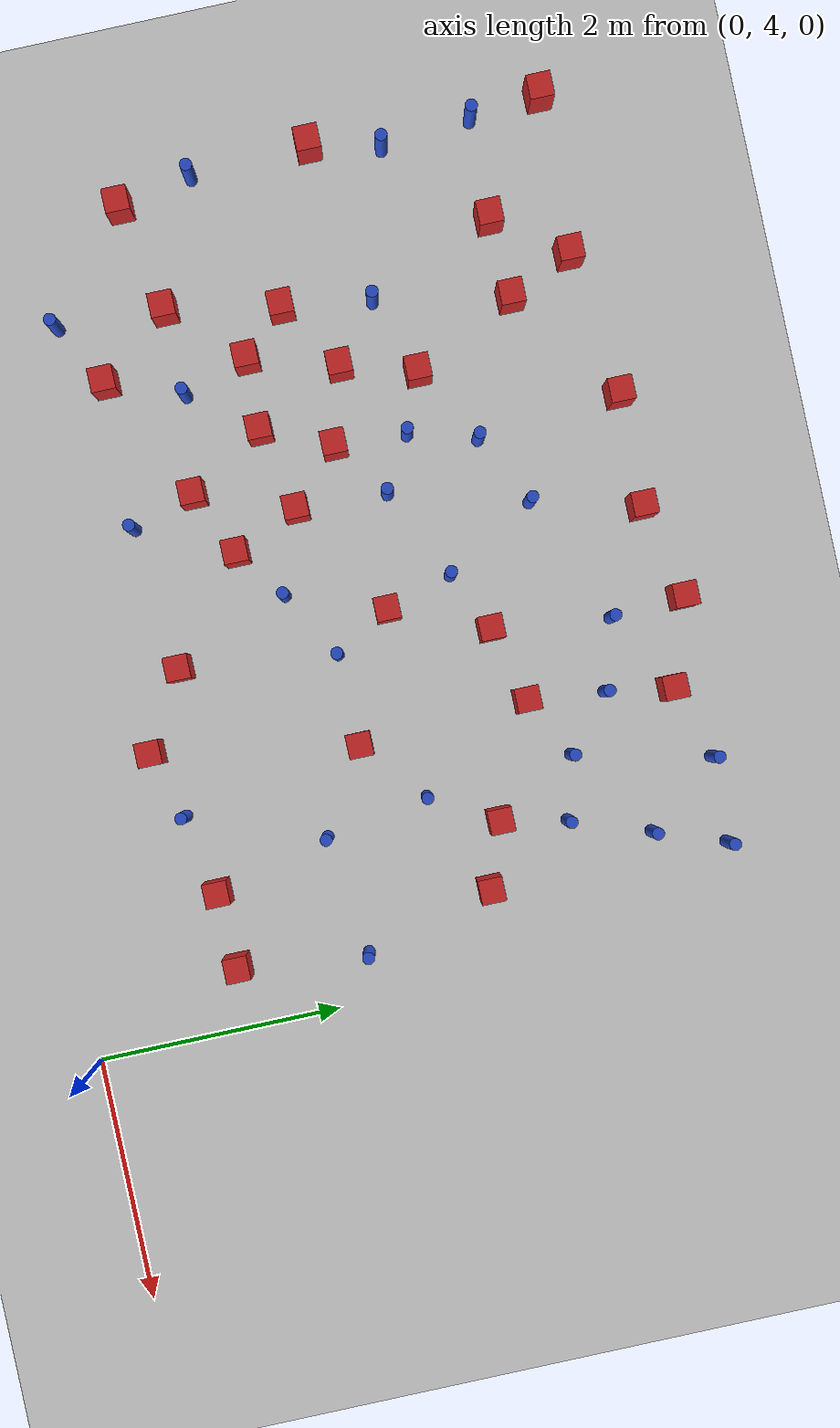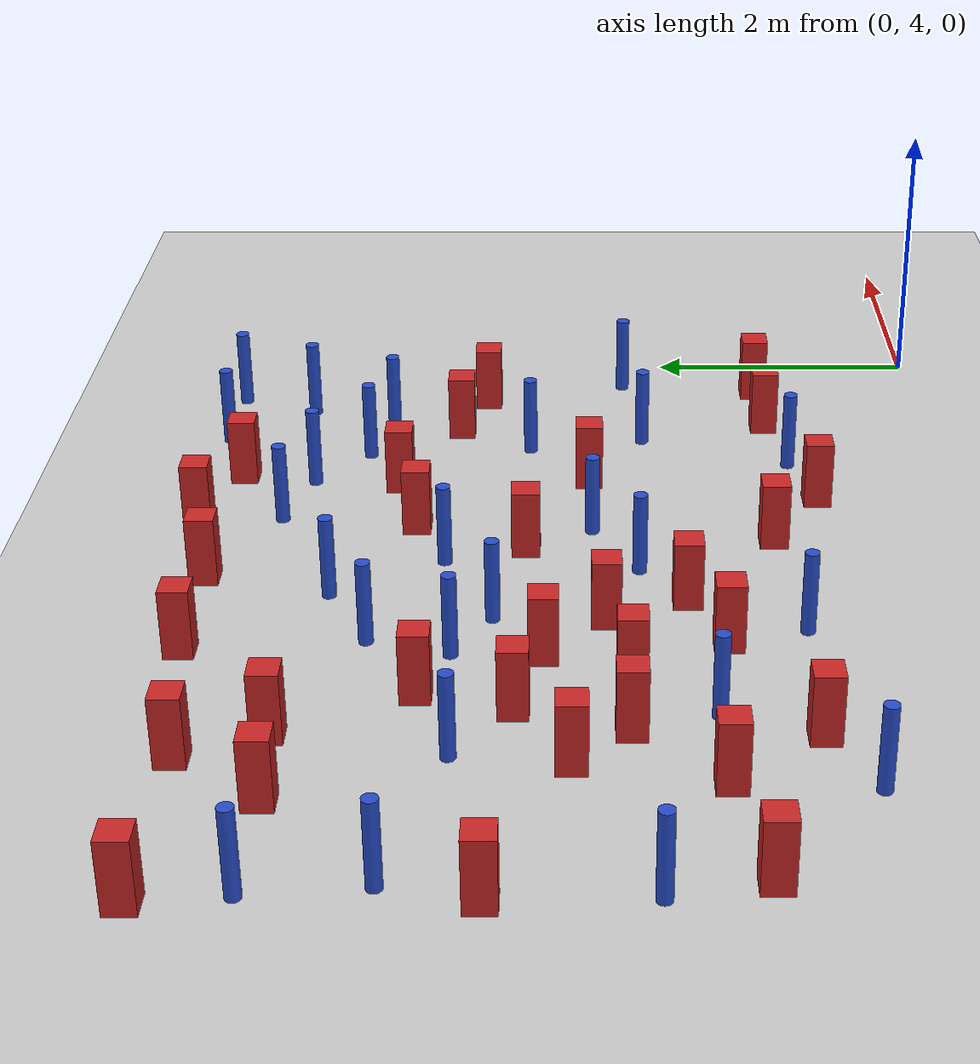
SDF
<sdf version="1.6">
 <world name="default">
  <model name="ground_plane">
   <static>1</static>
   <link name="link">
    <collision name="collision">
     <geometry><plane><normal>0 0 1</normal><size>100 100</size></plane></geometry>
     <surface><friction><ode><mu>100</mu><mu2>50</mu2></ode></friction></surface>
    </collision>
    <visual name="visual">
     <cast_shadows>0</cast_shadows>
     <geometry><plane><normal>0 0 1</normal><size>100 100</size></plane></geometry>
     <material>
      <ambient>1.0 1.0 1.0 1.0</ambient>
      <diffuse>0.8 0.8 0.8 1.0</diffuse>
      <specular>0.01 0.01 0.01 1.000000</specular>
     </material>
    </visual>
   </link>
  </model>
  <model name="square_post_obstacle0">
   <static>true</static>
   <pose>-1.24056156243 7.60405994039 8.22691968438e-08 7.2212513382e-06 -7.54495500217e-07 2.29674213826e-05</pose>
   <link name="link">
    <pose>0 0 0.25 0 -0 0</pose>
    <inertial>
     <mass>100</mass>
     <inertia>
      <ixx>0.166667</ixx>
      <ixy>0</ixy>
      <ixz>0</ixz>
      <iyy>0.166667</iyy>
      <iyz>0</iyz>
      <izz>0.166667</izz>
     </inertia>
    </inertial>
    <collision name="collision"><geometry><box><size>.2 .2 .5</size></box></geometry></collision>
    <visual name="visual">
     <geometry><box><size>.2 .2 .5</size></box></geometry>
     <material>
      <script><name>Gazebo/Red</name><uri>file://media/materials/scripts/gazebo.material</uri></script>
     </material>
    </visual>
   </link>
  </model>
  <model name="square_post_obstacle2">
   <static>true</static>
   <pose>-3.81783800172 5.97276972752 8.22691968438e-08 7.2212513382e-06 -7.54495500217e-07 2.29674213826e-05</pose>
   <link name="link">
    <pose>0 0 0.25 0 -0 0</pose>
    <inertial>
     <mass>100</mass>
     <inertia>
      <ixx>0.166667</ixx>
      <ixy>0</ixy>
      <ixz>0</ixz>
      <iyy>0.166667</iyy>
      <iyz>0</iyz>
      <izz>0.166667</izz>
     </inertia>
    </inertial>
    <collision name="collision"><geometry><box><size>.2 .2 .5</size></box></geometry></collision>
    <visual name="visual">
     <geometry><box><size>.2 .2 .5</size></box></geometry>
     <material>
      <script><name>Gazebo/Red</name><uri>file://media/materials/scripts/gazebo.material</uri></script>
     </material>
    </visual>
   </link>
  </model>
  <model name="pole_obstacle8">
   <static>true</static>
   <pose>-1.11618082176 8.14739392024 2.88873142074e-08 -9.90536690474e-09 4.60219948974e-07 -1.2096599497e-07</pose>
   <link name="link">
    <pose>0 0 0.3 0 -0 0</pose>
    <inertial>
     <mass>1</mass>
     <inertia><ixx>0.145833</ixx><ixy>0</ixy><ixz>0</ixz><iyy>0.145833</iyy><iyz>0</iyz><izz>0.125</izz></inertia>
    </inertial>
    <collision name="collision">
     <geometry><cylinder><radius>0.05</radius><length>.6</length></cylinder></geometry>
    </collision>
    <visual name="visual">
     <geometry><cylinder><radius>0.05</radius><length>.6</length></cylinder></geometry>
     <material>
      <script><name>Gazebo/Blue</name><uri>file://media/materials/scripts/gazebo.material</uri></script>
     </material>
    </visual>
   </link>
  </model>
  <model name="square_post_obstacle19">
   <static>true</static>
   <pose>-2.99553876486 5.32065947652 8.22691968438e-08 7.2212513382e-06 -7.54495500217e-07 2.29674213826e-05</pose>
   <link name="link">
    <pose>0 0 0.25 0 -0 0</pose>
    <inertial>
     <mass>100</mass>
     <inertia>
      <ixx>0.166667</ixx>
      <ixy>0</ixy>
      <ixz>0</ixz>
      <iyy>0.166667</iyy>
      <iyz>0</iyz>
      <izz>0.166667</izz>
     </inertia>
    </inertial>
    <collision name="collision"><geometry><box><size>.2 .2 .5</size></box></geometry></collision>
    <visual name="visual">
     <geometry><box><size>.2 .2 .5</size></box></geometry>
     <material>
      <script><name>Gazebo/Red</name><uri>file://media/materials/scripts/gazebo.material</uri></script>
     </material>
    </visual>
   </link>
  </model>
  <model name="pole_obstacle11">
   <static>true</static>
   <pose>-6.87196957462 8.5809538864 2.88873142074e-08 -9.9053668967e-09 4.60219948993e-07 -1.20965994957e-07</pose>
   <link name="link">
    <pose>0 0 0.3 0 -0 0</pose>
    <inertial>
     <mass>1</mass>
     <inertia><ixx>0.145833</ixx><ixy>0</ixy><ixz>0</ixz><iyy>0.145833</iyy><iyz>0</iyz><izz>0.125</izz></inertia>
    </inertial>
    <collision name="collision">
     <geometry><cylinder><radius>0.05</radius><length>.6</length></cylinder></geometry>
    </collision>
    <visual name="visual">
     <geometry><cylinder><radius>0.05</radius><length>.6</length></cylinder></geometry>
     <material>
      <script><name>Gazebo/Blue</name><uri>file://media/materials/scripts/gazebo.material</uri></script>
     </material>
    </visual>
   </link>
  </model>
  <model name="square_post_obstacle20">
   <static>true</static>
   <pose>-6.92894778926 7.24512789114 8.22691968438e-08 7.2212513382e-06 -7.54495500217e-07 2.29674213826e-05</pose>
   <link name="link">
    <pose>0 0 0.25 0 -0 0</pose>
    <inertial>
     <mass>100</mass>
     <inertia>
      <ixx>0.166667</ixx>
      <ixy>0</ixy>
      <ixz>0</ixz>
      <iyy>0.166667</iyy>
      <iyz>0</iyz>
      <izz>0.166667</izz>
     </inertia>
    </inertial>
    <collision name="collision"><geometry><box><size>.2 .2 .5</size></box></geometry></collision>
    <visual name="visual">
     <geometry><box><size>.2 .2 .5</size></box></geometry>
     <material>
      <script><name>Gazebo/Red</name><uri>file://media/materials/scripts/gazebo.material</uri></script>
     </material>
    </visual>
   </link>
  </model>
  <model name="square_post_obstacle22">
   <static>true</static>
   <pose>-3.49046418424 9.27107695211 8.22691968438e-08 7.22125133819e-06 -7.54495500217e-07 2.29674213826e-05</pose>
   <link name="link">
    <pose>0 0 0.25 0 -0 0</pose>
    <inertial>
     <mass>100</mass>
     <inertia>
      <ixx>0.166667</ixx>
      <ixy>0</ixy>
      <ixz>0</ixz>
      <iyy>0.166667</iyy>
      <iyz>0</iyz>
      <izz>0.166667</izz>
     </inertia>
    </inertial>
    <collision name="collision"><geometry><box><size>.2 .2 .5</size></box></geometry></collision>
    <visual name="visual">
     <geometry><box><size>.2 .2 .5</size></box></geometry>
     <material>
      <script><name>Gazebo/Red</name><uri>file://media/materials/scripts/gazebo.material</uri></script>
     </material>
    </visual>
   </link>
  </model>
  <model name="pole_obstacle19">
   <static>true</static>
   <pose>-6.894988678 6.25508551908 2.88873142074e-08 -9.90536690842e-09 4.60219948965e-07 -1.20965994976e-07</pose>
   <link name="link">
    <pose>0 0 0.3 0 -0 0</pose>
    <inertial>
     <mass>1</mass>
     <inertia><ixx>0.145833</ixx><ixy>0</ixy><ixz>0</ixz><iyy>0.145833</iyy><iyz>0</iyz><izz>0.125</izz></inertia>
    </inertial>
    <collision name="collision">
     <geometry><cylinder><radius>0.05</radius><length>.6</length></cylinder></geometry>
    </collision>
    <visual name="visual">
     <geometry><cylinder><radius>0.05</radius><length>.6</length></cylinder></geometry>
     <material>
      <script><name>Gazebo/Blue</name><uri>file://media/materials/scripts/gazebo.material</uri></script>
     </material>
    </visual>
   </link>
  </model>
  <model name="square_post_obstacle29">
   <static>true</static>
   <pose>-2.15079923924 8.02366086059 8.22691968438e-08 7.22125133819e-06 -7.54495500217e-07 2.29674213826e-05</pose>
   <link name="link">
    <pose>0 0 0.25 0 -0 0</pose>
    <inertial>
     <mass>100</mass>
     <inertia>
      <ixx>0.166667</ixx>
      <ixy>0</ixy>
      <ixz>0</ixz>
      <iyy>0.166667</iyy>
      <iyz>0</iyz>
      <izz>0.166667</izz>
     </inertia>
    </inertial>
    <collision name="collision"><geometry><box><size>.2 .2 .5</size></box></geometry></collision>
    <visual name="visual">
     <geometry><box><size>.2 .2 .5</size></box></geometry>
     <material>
      <script><name>Gazebo/Red</name><uri>file://media/materials/scripts/gazebo.material</uri></script>
     </material>
    </visual>
   </link>
  </model>
  <model name="square_post_obstacle31">
   <static>true</static>
   <pose>-5.37480407238 8.58938074372 8.22691968438e-08 7.22125133819e-06 -7.54495500217e-07 2.29674213826e-05</pose>
   <link name="link">
    <pose>0 0 0.25 0 -0 0</pose>
    <inertial>
     <mass>100</mass>
     <inertia>
      <ixx>0.166667</ixx>
      <ixy>0</ixy>
      <ixz>0</ixz>
      <iyy>0.166667</iyy>
      <iyz>0</iyz>
      <izz>0.166667</izz>
     </inertia>
    </inertial>
    <collision name="collision"><geometry><box><size>.2 .2 .5</size></box></geometry></collision>
    <visual name="visual">
     <geometry><box><size>.2 .2 .5</size></box></geometry>
     <material>
      <script><name>Gazebo/Red</name><uri>file://media/materials/scripts/gazebo.material</uri></script>
     </material>
    </visual>
   </link>
  </model>
  <model name="pole_obstacle27">
   <static>true</static>
   <pose>-2.83430194717 6.60351410121 2.88873142074e-08 -9.90536689859e-09 4.60219948989e-07 -1.20965994961e-07</pose>
   <link name="link">
    <pose>0 0 0.3 0 -0 0</pose>
    <inertial>
     <mass>1</mass>
     <inertia><ixx>0.145833</ixx><ixy>0</ixy><ixz>0</ixz><iyy>0.145833</iyy><iyz>0</iyz><izz>0.125</izz></inertia>
    </inertial>
    <collision name="collision">
     <geometry><cylinder><radius>0.05</radius><length>.6</length></cylinder></geometry>
    </collision>
    <visual name="visual">
     <geometry><cylinder><radius>0.05</radius><length>.6</length></cylinder></geometry>
     <material>
      <script><name>Gazebo/Blue</name><uri>file://media/materials/scripts/gazebo.material</uri></script>
     </material>
    </visual>
   </link>
  </model>
  <model name="pole_obstacle28">
   <static>true</static>
   <pose>-0.881720828298 8.80049282505 2.88873142074e-08 -9.90536690779e-09 4.60219948967e-07 -1.20965994975e-07</pose>
   <link name="link">
    <pose>0 0 0.3 0 -0 0</pose>
    <inertial>
     <mass>1</mass>
     <inertia><ixx>0.145833</ixx><ixy>0</ixy><ixz>0</ixz><iyy>0.145833</iyy><iyz>0</iyz><izz>0.125</izz></inertia>
    </inertial>
    <collision name="collision">
     <geometry><cylinder><radius>0.05</radius><length>.6</length></cylinder></geometry>
    </collision>
    <visual name="visual">
     <geometry><cylinder><radius>0.05</radius><length>.6</length></cylinder></geometry>
     <material>
      <script><name>Gazebo/Blue</name><uri>file://media/materials/scripts/gazebo.material</uri></script>
     </material>
    </visual>
   </link>
  </model>
  <model name="pole_obstacle31">
   <static>true</static>
   <pose>-1.37464773365 9.41036834551 2.88873142074e-08 -9.90536690474e-09 4.60219948974e-07 -1.2096599497e-07</pose>
   <link name="link">
    <pose>0 0 0.3 0 -0 0</pose>
    <inertial>
     <mass>1</mass>
     <inertia><ixx>0.145833</ixx><ixy>0</ixy><ixz>0</ixz><iyy>0.145833</iyy><iyz>0</iyz><izz>0.125</izz></inertia>
    </inertial>
    <collision name="collision">
     <geometry><cylinder><radius>0.05</radius><length>.6</length></cylinder></geometry>
    </collision>
    <visual name="visual">
     <geometry><cylinder><radius>0.05</radius><length>.6</length></cylinder></geometry>
     <material>
      <script><name>Gazebo/Blue</name><uri>file://media/materials/scripts/gazebo.material</uri></script>
     </material>
    </visual>
   </link>
  </model>
  <model name="square_post_obstacle41">
   <static>true</static>
   <pose>-4.75216271165 6.3695584136 8.22691968438e-08 7.22125133819e-06 -7.54495500217e-07 2.29674213826e-05</pose>
   <link name="link">
    <pose>0 0 0.25 0 -0 0</pose>
    <inertial>
     <mass>100</mass>
     <inertia>
      <ixx>0.166667</ixx>
      <ixy>0</ixy>
      <ixz>0</ixz>
      <iyy>0.166667</iyy>
      <iyz>0</iyz>
      <izz>0.166667</izz>
     </inertia>
    </inertial>
    <collision name="collision"><geometry><box><size>.2 .2 .5</size></box></geometry></collision>
    <visual name="visual">
     <geometry><box><size>.2 .2 .5</size></box></geometry>
     <material>
      <script><name>Gazebo/Red</name><uri>file://media/materials/scripts/gazebo.material</uri></script>
     </material>
    </visual>
   </link>
  </model>
  <model name="square_post_obstacle49">
   <static>true</static>
   <pose>-2.07835015047 6.62156302349 8.22691968438e-08 7.22125133819e-06 -7.54495500217e-07 2.29674213826e-05</pose>
   <link name="link">
    <pose>0 0 0.25 0 -0 0</pose>
    <inertial>
     <mass>100</mass>
     <inertia>
      <ixx>0.166667</ixx>
      <ixy>0</ixy>
      <ixz>0</ixz>
      <iyy>0.166667</iyy>
      <iyz>0</iyz>
      <izz>0.166667</izz>
     </inertia>
    </inertial>
    <collision name="collision"><geometry><box><size>.2 .2 .5</size></box></geometry></collision>
    <visual name="visual">
     <geometry><box><size>.2 .2 .5</size></box></geometry>
     <material>
      <script><name>Gazebo/Red</name><uri>file://media/materials/scripts/gazebo.material</uri></script>
     </material>
    </visual>
   </link>
  </model>
  <model name="pole_obstacle54">
   <static>true</static>
   <pose>-4.18480742666 5.19874319376 2.88873142074e-08 -9.90536690842e-09 4.60219948965e-07 -1.20965994976e-07</pose>
   <link name="link">
    <pose>0 0 0.3 0 -0 0</pose>
    <inertial>
     <mass>1</mass>
     <inertia><ixx>0.145833</ixx><ixy>0</ixy><ixz>0</ixz><iyy>0.145833</iyy><iyz>0</iyz><izz>0.125</izz></inertia>
    </inertial>
    <collision name="collision">
     <geometry><cylinder><radius>0.05</radius><length>.6</length></cylinder></geometry>
    </collision>
    <visual name="visual">
     <geometry><cylinder><radius>0.05</radius><length>.6</length></cylinder></geometry>
     <material>
      <script><name>Gazebo/Blue</name><uri>file://media/materials/scripts/gazebo.material</uri></script>
     </material>
    </visual>
   </link>
  </model>
  <model name="pole_obstacle55">
   <static>true</static>
   <pose>-6.79586150801 7.82657855512 2.88873142074e-08 -9.90536690842e-09 4.60219948965e-07 -1.20965994976e-07</pose>
   <link name="link">
    <pose>0 0 0.3 0 -0 0</pose>
    <inertial>
     <mass>1</mass>
     <inertia><ixx>0.145833</ixx><ixy>0</ixy><ixz>0</ixz><iyy>0.145833</iyy><iyz>0</iyz><izz>0.125</izz></inertia>
    </inertial>
    <collision name="collision">
     <geometry><cylinder><radius>0.05</radius><length>.6</length></cylinder></geometry>
    </collision>
    <visual name="visual">
     <geometry><cylinder><radius>0.05</radius><length>.6</length></cylinder></geometry>
     <material>
      <script><name>Gazebo/Blue</name><uri>file://media/materials/scripts/gazebo.material</uri></script>
     </material>
    </visual>
   </link>
  </model>
  <model name="pole_obstacle64">
   <static>true</static>
   <pose>-1.80840830395 5.10802447048 2.88873142074e-08 -9.90536689852e-09 4.60219948989e-07 -1.2096599496e-07</pose>
   <link name="link">
    <pose>0 0 0.3 0 -0 0</pose>
    <inertial>
     <mass>1</mass>
     <inertia><ixx>0.145833</ixx><ixy>0</ixy><ixz>0</ixz><iyy>0.145833</iyy><iyz>0</iyz><izz>0.125</izz></inertia>
    </inertial>
    <collision name="collision">
     <geometry><cylinder><radius>0.05</radius><length>.6</length></cylinder></geometry>
    </collision>
    <visual name="visual">
     <geometry><cylinder><radius>0.05</radius><length>.6</length></cylinder></geometry>
     <material>
      <script><name>Gazebo/Blue</name><uri>file://media/materials/scripts/gazebo.material</uri></script>
     </material>
    </visual>
   </link>
  </model>
  <model name="square_post_obstacle67">
   <static>true</static>
   <pose>-4.06310362804 6.52372642739 8.22691968438e-08 7.2212513382e-06 -7.54495500217e-07 2.29674213826e-05</pose>
   <link name="link">
    <pose>0 0 0.25 0 -0 0</pose>
    <inertial>
     <mass>100</mass>
     <inertia>
      <ixx>0.166667</ixx>
      <ixy>0</ixy>
      <ixz>0</ixz>
      <iyy>0.166667</iyy>
      <iyz>0</iyz>
      <izz>0.166667</izz>
     </inertia>
    </inertial>
    <collision name="collision"><geometry><box><size>.2 .2 .5</size></box></geometry></collision>
    <visual name="visual">
     <geometry><box><size>.2 .2 .5</size></box></geometry>
     <material>
      <script><name>Gazebo/Red</name><uri>file://media/materials/scripts/gazebo.material</uri></script>
     </material>
    </visual>
   </link>
  </model>
  <model name="square_post_obstacle77">
   <static>true</static>
   <pose>-2.77741709891 7.85880427165 8.22691968438e-08 7.2212513382e-06 -7.54495500217e-07 2.29674213826e-05</pose>
   <link name="link">
    <pose>0 0 0.25 0 -0 0</pose>
    <inertial>
     <mass>100</mass>
     <inertia>
      <ixx>0.166667</ixx>
      <ixy>0</ixy>
      <ixz>0</ixz>
      <iyy>0.166667</iyy>
      <iyz>0</iyz>
      <izz>0.166667</izz>
     </inertia>
    </inertial>
    <collision name="collision"><geometry><box><size>.2 .2 .5</size></box></geometry></collision>
    <visual name="visual">
     <geometry><box><size>.2 .2 .5</size></box></geometry>
     <material>
      <script><name>Gazebo/Red</name><uri>file://media/materials/scripts/gazebo.material</uri></script>
     </material>
    </visual>
   </link>
  </model>
  <model name="square_post_obstacle78">
   <static>true</static>
   <pose>-5.39090013703 5.22461043448 8.22691968438e-08 7.2212513382e-06 -7.54495500217e-07 2.29674213826e-05</pose>
   <link name="link">
    <pose>0 0 0.25 0 -0 0</pose>
    <inertial>
     <mass>100</mass>
     <inertia>
      <ixx>0.166667</ixx>
      <ixy>0</ixy>
      <ixz>0</ixz>
      <iyy>0.166667</iyy>
      <iyz>0</iyz>
      <izz>0.166667</izz>
     </inertia>
    </inertial>
    <collision name="collision"><geometry><box><size>.2 .2 .5</size></box></geometry></collision>
    <visual name="visual">
     <geometry><box><size>.2 .2 .5</size></box></geometry>
     <material>
      <script><name>Gazebo/Red</name><uri>file://media/materials/scripts/gazebo.material</uri></script>
     </material>
    </visual>
   </link>
  </model>
  <model name="pole_obstacle87">
   <static>true</static>
   <pose>-3.72088470826 8.39502666144 2.88873142074e-08 -9.90536692318e-09 4.6021994893e-07 -1.20965994988e-07</pose>
   <link name="link">
    <pose>0 0 0.3 0 -0 0</pose>
    <inertial>
     <mass>1</mass>
     <inertia><ixx>0.145833</ixx><ixy>0</ixy><ixz>0</ixz><iyy>0.145833</iyy><iyz>0</iyz><izz>0.125</izz></inertia>
    </inertial>
    <collision name="collision">
     <geometry><cylinder><radius>0.05</radius><length>.6</length></cylinder></geometry>
    </collision>
    <visual name="visual">
     <geometry><cylinder><radius>0.05</radius><length>.6</length></cylinder></geometry>
     <material>
      <script><name>Gazebo/Blue</name><uri>file://media/materials/scripts/gazebo.material</uri></script>
     </material>
    </visual>
   </link>
  </model>
  <model name="square_post_obstacle93">
   <static>true</static>
   <pose>-3.10732170272 7.07258946887 8.22691968438e-08 7.2212513382e-06 -7.54495500217e-07 2.29674213826e-05</pose>
   <link name="link">
    <pose>0 0 0.25 0 -0 0</pose>
    <inertial>
     <mass>100</mass>
     <inertia>
      <ixx>0.166667</ixx>
      <ixy>0</ixy>
      <ixz>0</ixz>
      <iyy>0.166667</iyy>
      <iyz>0</iyz>
      <izz>0.166667</izz>
     </inertia>
    </inertial>
    <collision name="collision"><geometry><box><size>.2 .2 .5</size></box></geometry></collision>
    <visual name="visual">
     <geometry><box><size>.2 .2 .5</size></box></geometry>
     <material>
      <script><name>Gazebo/Red</name><uri>file://media/materials/scripts/gazebo.material</uri></script>
     </material>
    </visual>
   </link>
  </model>
  <model name="square_post_obstacle103">
   <static>true</static>
   <pose>-0.526675739928 5.27401405673 8.22691968438e-08 7.2212513382e-06 -7.54495500217e-07 2.29674213826e-05</pose>
   <link name="link">
    <pose>0 0 0.25 0 -0 0</pose>
    <inertial>
     <mass>100</mass>
     <inertia>
      <ixx>0.166667</ixx>
      <ixy>0</ixy>
      <ixz>0</ixz>
      <iyy>0.166667</iyy>
      <iyz>0</iyz>
      <izz>0.166667</izz>
     </inertia>
    </inertial>
    <collision name="collision"><geometry><box><size>.2 .2 .5</size></box></geometry></collision>
    <visual name="visual">
     <geometry><box><size>.2 .2 .5</size></box></geometry>
     <material>
      <script><name>Gazebo/Red</name><uri>file://media/materials/scripts/gazebo.material</uri></script>
     </material>
    </visual>
   </link>
  </model>
  <model name="square_post_obstacle104">
   <static>true</static>
   <pose>-2.70436583497 9.43806250138 8.22691968438e-08 7.22125133819e-06 -7.54495500217e-07 2.29674213826e-05</pose>
   <link name="link">
    <pose>0 0 0.25 0 -0 0</pose>
    <inertial>
     <mass>100</mass>
     <inertia>
      <ixx>0.166667</ixx>
      <ixy>0</ixy>
      <ixz>0</ixz>
      <iyy>0.166667</iyy>
      <iyz>0</iyz>
      <izz>0.166667</izz>
     </inertia>
    </inertial>
    <collision name="collision"><geometry><box><size>.2 .2 .5</size></box></geometry></collision>
    <visual name="visual">
     <geometry><box><size>.2 .2 .5</size></box></geometry>
     <material>
      <script><name>Gazebo/Red</name><uri>file://media/materials/scripts/gazebo.material</uri></script>
     </material>
    </visual>
   </link>
  </model>
  <model name="square_post_obstacle108">
   <static>true</static>
   <pose>-2.37048747096 4.94945059315 8.22691968438e-08 7.2212513382e-06 -7.54495500217e-07 2.29674213826e-05</pose>
   <link name="link">
    <pose>0 0 0.25 0 -0 0</pose>
    <inertial>
     <mass>100</mass>
     <inertia>
      <ixx>0.166667</ixx>
      <ixy>0</ixy>
      <ixz>0</ixz>
      <iyy>0.166667</iyy>
      <iyz>0</iyz>
      <izz>0.166667</izz>
     </inertia>
    </inertial>
    <collision name="collision"><geometry><box><size>.2 .2 .5</size></box></geometry></collision>
    <visual name="visual">
     <geometry><box><size>.2 .2 .5</size></box></geometry>
     <material>
      <script><name>Gazebo/Red</name><uri>file://media/materials/scripts/gazebo.material</uri></script>
     </material>
    </visual>
   </link>
  </model>
  <model name="square_post_obstacle110">
   <static>true</static>
   <pose>-5.62024013825 9.12747473342 8.22691968438e-08 7.22125133819e-06 -7.54495500217e-07 2.29674213826e-05</pose>
   <link name="link">
    <pose>0 0 0.25 0 -0 0</pose>
    <inertial>
     <mass>100</mass>
     <inertia>
      <ixx>0.166667</ixx>
      <ixy>0</ixy>
      <ixz>0</ixz>
      <iyy>0.166667</iyy>
      <iyz>0</iyz>
      <izz>0.166667</izz>
     </inertia>
    </inertial>
    <collision name="collision"><geometry><box><size>.2 .2 .5</size></box></geometry></collision>
    <visual name="visual">
     <geometry><box><size>.2 .2 .5</size></box></geometry>
     <material>
      <script><name>Gazebo/Red</name><uri>file://media/materials/scripts/gazebo.material</uri></script>
     </material>
    </visual>
   </link>
  </model>
  <model name="square_post_obstacle112">
   <static>true</static>
   <pose>-4.42362314433 9.28408175921 8.22691968438e-08 7.22125133819e-06 -7.54495500217e-07 2.29674213826e-05</pose>
   <link name="link">
    <pose>0 0 0.25 0 -0 0</pose>
    <inertial>
     <mass>100</mass>
     <inertia>
      <ixx>0.166667</ixx>
      <ixy>0</ixy>
      <ixz>0</ixz>
      <iyy>0.166667</iyy>
      <iyz>0</iyz>
      <izz>0.166667</izz>
     </inertia>
    </inertial>
    <collision name="collision"><geometry><box><size>.2 .2 .5</size></box></geometry></collision>
    <visual name="visual">
     <geometry><box><size>.2 .2 .5</size></box></geometry>
     <material>
      <script><name>Gazebo/Red</name><uri>file://media/materials/scripts/gazebo.material</uri></script>
     </material>
    </visual>
   </link>
  </model>
  <model name="pole_obstacle127">
   <static>true</static>
   <pose>-4.03116325493 7.27642994995 2.88873142074e-08 -9.90536691069e-09 4.6021994896e-07 -1.20965994979e-07</pose>
   <link name="link">
    <pose>0 0 0.3 0 -0 0</pose>
    <inertial>
     <mass>1</mass>
     <inertia><ixx>0.145833</ixx><ixy>0</ixy><ixz>0</ixz><iyy>0.145833</iyy><iyz>0</iyz><izz>0.125</izz></inertia>
    </inertial>
    <collision name="collision">
     <geometry><cylinder><radius>0.05</radius><length>.6</length></cylinder></geometry>
    </collision>
    <visual name="visual">
     <geometry><cylinder><radius>0.05</radius><length>.6</length></cylinder></geometry>
     <material>
      <script><name>Gazebo/Blue</name><uri>file://media/materials/scripts/gazebo.material</uri></script>
     </material>
    </visual>
   </link>
  </model>
  <model name="pole_obstacle132">
   <static>true</static>
   <pose>-4.30990283819 8.09398616988 2.88873142074e-08 -9.9053668967e-09 4.60219948993e-07 -1.20965994957e-07</pose>
   <link name="link">
    <pose>0 0 0.3 0 -0 0</pose>
    <inertial>
     <mass>1</mass>
     <inertia><ixx>0.145833</ixx><ixy>0</ixy><ixz>0</ixz><iyy>0.145833</iyy><iyz>0</iyz><izz>0.125</izz></inertia>
    </inertial>
    <collision name="collision">
     <geometry><cylinder><radius>0.05</radius><length>.6</length></cylinder></geometry>
    </collision>
    <visual name="visual">
     <geometry><cylinder><radius>0.05</radius><length>.6</length></cylinder></geometry>
     <material>
      <script><name>Gazebo/Blue</name><uri>file://media/materials/scripts/gazebo.material</uri></script>
     </material>
    </visual>
   </link>
  </model>
  <model name="square_post_obstacle125">
   <static>true</static>
   <pose>-5.69023169347 6.75379353841 8.22691968438e-08 7.22125133819e-06 -7.54495500217e-07 2.29674213826e-05</pose>
   <link name="link">
    <pose>0 0 0.25 0 -0 0</pose>
    <inertial>
     <mass>100</mass>
     <inertia>
      <ixx>0.166667</ixx>
      <ixy>0</ixy>
      <ixz>0</ixz>
      <iyy>0.166667</iyy>
      <iyz>0</iyz>
      <izz>0.166667</izz>
     </inertia>
    </inertial>
    <collision name="collision"><geometry><box><size>.2 .2 .5</size></box></geometry></collision>
    <visual name="visual">
     <geometry><box><size>.2 .2 .5</size></box></geometry>
     <material>
      <script><name>Gazebo/Red</name><uri>file://media/materials/scripts/gazebo.material</uri></script>
     </material>
    </visual>
   </link>
  </model>
  <model name="square_post_obstacle135">
   <static>true</static>
   <pose>-5.87402302679 5.82084964344 8.22691968438e-08 7.2212513382e-06 -7.54495500217e-07 2.29674213826e-05</pose>
   <link name="link">
    <pose>0 0 0.25 0 -0 0</pose>
    <inertial>
     <mass>100</mass>
     <inertia>
      <ixx>0.166667</ixx>
      <ixy>0</ixy>
      <ixz>0</ixz>
      <iyy>0.166667</iyy>
      <iyz>0</iyz>
      <izz>0.166667</izz>
     </inertia>
    </inertial>
    <collision name="collision"><geometry><box><size>.2 .2 .5</size></box></geometry></collision>
    <visual name="visual">
     <geometry><box><size>.2 .2 .5</size></box></geometry>
     <material>
      <script><name>Gazebo/Red</name><uri>file://media/materials/scripts/gazebo.material</uri></script>
     </material>
    </visual>
   </link>
  </model>
  <model name="pole_obstacle147">
   <static>true</static>
   <pose>-1.54829642677 7.06569432322 2.88873142074e-08 -9.90536689852e-09 4.60219948989e-07 -1.2096599496e-07</pose>
   <link name="link">
    <pose>0 0 0.3 0 -0 0</pose>
    <inertial>
     <mass>1</mass>
     <inertia><ixx>0.145833</ixx><ixy>0</ixy><ixz>0</ixz><iyy>0.145833</iyy><iyz>0</iyz><izz>0.125</izz></inertia>
    </inertial>
    <collision name="collision">
     <geometry><cylinder><radius>0.05</radius><length>.6</length></cylinder></geometry>
    </collision>
    <visual name="visual">
     <geometry><cylinder><radius>0.05</radius><length>.6</length></cylinder></geometry>
     <material>
      <script><name>Gazebo/Blue</name><uri>file://media/materials/scripts/gazebo.material</uri></script>
     </material>
    </visual>
   </link>
  </model>
  <model name="square_post_obstacle137">
   <static>true</static>
   <pose>-1.99507761346 9.20154818949 8.22691968438e-08 7.22125133819e-06 -7.54495500217e-07 2.29674213826e-05</pose>
   <link name="link">
    <pose>0 0 0.25 0 -0 0</pose>
    <inertial>
     <mass>100</mass>
     <inertia>
      <ixx>0.166667</ixx>
      <ixy>0</ixy>
      <ixz>0</ixz>
      <iyy>0.166667</iyy>
      <iyz>0</iyz>
      <izz>0.166667</izz>
     </inertia>
    </inertial>
    <collision name="collision"><geometry><box><size>.2 .2 .5</size></box></geometry></collision>
    <visual name="visual">
     <geometry><box><size>.2 .2 .5</size></box></geometry>
     <material>
      <script><name>Gazebo/Red</name><uri>file://media/materials/scripts/gazebo.material</uri></script>
     </material>
    </visual>
   </link>
  </model>
  <model name="square_post_obstacle139">
   <static>true</static>
   <pose>-6.93667169773 9.16232930853 8.22691968438e-08 7.22125133819e-06 -7.54495500217e-07 2.29674213826e-05</pose>
   <link name="link">
    <pose>0 0 0.25 0 -0 0</pose>
    <inertial>
     <mass>100</mass>
     <inertia>
      <ixx>0.166667</ixx>
      <ixy>0</ixy>
      <ixz>0</ixz>
      <iyy>0.166667</iyy>
      <iyz>0</iyz>
      <izz>0.166667</izz>
     </inertia>
    </inertial>
    <collision name="collision"><geometry><box><size>.2 .2 .5</size></box></geometry></collision>
    <visual name="visual">
     <geometry><box><size>.2 .2 .5</size></box></geometry>
     <material>
      <script><name>Gazebo/Red</name><uri>file://media/materials/scripts/gazebo.material</uri></script>
     </material>
    </visual>
   </link>
  </model>
  <model name="square_post_obstacle148">
   <static>true</static>
   <pose>-6.77107393141 5.6418810152 8.22691968438e-08 7.2212513382e-06 -7.54495500217e-07 2.29674213826e-05</pose>
   <link name="link">
    <pose>0 0 0.25 0 -0 0</pose>
    <inertial>
     <mass>100</mass>
     <inertia>
      <ixx>0.166667</ixx>
      <ixy>0</ixy>
      <ixz>0</ixz>
      <iyy>0.166667</iyy>
      <iyz>0</iyz>
      <izz>0.166667</izz>
     </inertia>
    </inertial>
    <collision name="collision"><geometry><box><size>.2 .2 .5</size></box></geometry></collision>
    <visual name="visual">
     <geometry><box><size>.2 .2 .5</size></box></geometry>
     <material>
      <script><name>Gazebo/Red</name><uri>file://media/materials/scripts/gazebo.material</uri></script>
     </material>
    </visual>
   </link>
  </model>
  <model name="pole_obstacle160">
   <static>true</static>
   <pose>-3.39543148192 6.28196684542 2.88873142074e-08 -9.90536692062e-09 4.60219948937e-07 -1.20965994985e-07</pose>
   <link name="link">
    <pose>0 0 0.3 0 -0 0</pose>
    <inertial>
     <mass>1</mass>
     <inertia><ixx>0.145833</ixx><ixy>0</ixy><ixz>0</ixz><iyy>0.145833</iyy><iyz>0</iyz><izz>0.125</izz></inertia>
    </inertial>
    <collision name="collision">
     <geometry><cylinder><radius>0.05</radius><length>.6</length></cylinder></geometry>
    </collision>
    <visual name="visual">
     <geometry><cylinder><radius>0.05</radius><length>.6</length></cylinder></geometry>
     <material>
      <script><name>Gazebo/Blue</name><uri>file://media/materials/scripts/gazebo.material</uri></script>
     </material>
    </visual>
   </link>
  </model>
  <model name="pole_obstacle164">
   <static>true</static>
   <pose>-2.07942139541 8.66723806211 2.88873142074e-08 -9.90536692318e-09 4.6021994893e-07 -1.20965994988e-07</pose>
   <link name="link">
    <pose>0 0 0.3 0 -0 0</pose>
    <inertial>
     <mass>1</mass>
     <inertia><ixx>0.145833</ixx><ixy>0</ixy><ixz>0</ixz><iyy>0.145833</iyy><iyz>0</iyz><izz>0.125</izz></inertia>
    </inertial>
    <collision name="collision">
     <geometry><cylinder><radius>0.05</radius><length>.6</length></cylinder></geometry>
    </collision>
    <visual name="visual">
     <geometry><cylinder><radius>0.05</radius><length>.6</length></cylinder></geometry>
     <material>
      <script><name>Gazebo/Blue</name><uri>file://media/materials/scripts/gazebo.material</uri></script>
     </material>
    </visual>
   </link>
  </model>
  <model name="pole_obstacle167">
   <static>true</static>
   <pose>-2.65868785088 8.84167810369 2.88873142074e-08 -9.90536692318e-09 4.6021994893e-07 -1.20965994988e-07</pose>
   <link name="link">
    <pose>0 0 0.3 0 -0 0</pose>
    <inertial>
     <mass>1</mass>
     <inertia><ixx>0.145833</ixx><ixy>0</ixy><ixz>0</ixz><iyy>0.145833</iyy><iyz>0</iyz><izz>0.125</izz></inertia>
    </inertial>
    <collision name="collision">
     <geometry><cylinder><radius>0.05</radius><length>.6</length></cylinder></geometry>
    </collision>
    <visual name="visual">
     <geometry><cylinder><radius>0.05</radius><length>.6</length></cylinder></geometry>
     <material>
      <script><name>Gazebo/Blue</name><uri>file://media/materials/scripts/gazebo.material</uri></script>
     </material>
    </visual>
   </link>
  </model>
  <model name="pole_obstacle168">
   <static>true</static>
   <pose>-1.39603456553 6.2043435952 2.88873142074e-08 -9.90536689852e-09 4.60219948989e-07 -1.2096599496e-07</pose>
   <link name="link">
    <pose>0 0 0.3 0 -0 0</pose>
    <inertial>
     <mass>1</mass>
     <inertia><ixx>0.145833</ixx><ixy>0</ixy><ixz>0</ixz><iyy>0.145833</iyy><iyz>0</iyz><izz>0.125</izz></inertia>
    </inertial>
    <collision name="collision">
     <geometry><cylinder><radius>0.05</radius><length>.6</length></cylinder></geometry>
    </collision>
    <visual name="visual">
     <geometry><cylinder><radius>0.05</radius><length>.6</length></cylinder></geometry>
     <material>
      <script><name>Gazebo/Blue</name><uri>file://media/materials/scripts/gazebo.material</uri></script>
     </material>
    </visual>
   </link>
  </model>
  <model name="pole_obstacle170">
   <static>true</static>
   <pose>-5.59262195168 7.49112841312 2.88873142074e-08 -9.90536690842e-09 4.60219948965e-07 -1.20965994976e-07</pose>
   <link name="link">
    <pose>0 0 0.3 0 -0 0</pose>
    <inertial>
     <mass>1</mass>
     <inertia><ixx>0.145833</ixx><ixy>0</ixy><ixz>0</ixz><iyy>0.145833</iyy><iyz>0</iyz><izz>0.125</izz></inertia>
    </inertial>
    <collision name="collision">
     <geometry><cylinder><radius>0.05</radius><length>.6</length></cylinder></geometry>
    </collision>
    <visual name="visual">
     <geometry><cylinder><radius>0.05</radius><length>.6</length></cylinder></geometry>
     <material>
      <script><name>Gazebo/Blue</name><uri>file://media/materials/scripts/gazebo.material</uri></script>
     </material>
    </visual>
   </link>
  </model>
  <model name="square_post_obstacle163">
   <static>true</static>
   <pose>-4.50298651904 6.93496134402 8.22691968438e-08 7.22125133819e-06 -7.54495500217e-07 2.29674213826e-05</pose>
   <link name="link">
    <pose>0 0 0.25 0 -0 0</pose>
    <inertial>
     <mass>100</mass>
     <inertia>
      <ixx>0.166667</ixx>
      <ixy>0</ixy>
      <ixz>0</ixz>
      <iyy>0.166667</iyy>
      <iyz>0</iyz>
      <izz>0.166667</izz>
     </inertia>
    </inertial>
    <collision name="collision"><geometry><box><size>.2 .2 .5</size></box></geometry></collision>
    <visual name="visual">
     <geometry><box><size>.2 .2 .5</size></box></geometry>
     <material>
      <script><name>Gazebo/Red</name><uri>file://media/materials/scripts/gazebo.material</uri></script>
     </material>
    </visual>
   </link>
  </model>
  <model name="square_post_obstacle165">
   <static>true</static>
   <pose>-4.35654998605 5.73123944728 8.22691968438e-08 7.2212513382e-06 -7.54495500217e-07 2.29674213826e-05</pose>
   <link name="link">
    <pose>0 0 0.25 0 -0 0</pose>
    <inertial>
     <mass>100</mass>
     <inertia>
      <ixx>0.166667</ixx>
      <ixy>0</ixy>
      <ixz>0</ixz>
      <iyy>0.166667</iyy>
      <iyz>0</iyz>
      <izz>0.166667</izz>
     </inertia>
    </inertial>
    <collision name="collision"><geometry><box><size>.2 .2 .5</size></box></geometry></collision>
    <visual name="visual">
     <geometry><box><size>.2 .2 .5</size></box></geometry>
     <material>
      <script><name>Gazebo/Red</name><uri>file://media/materials/scripts/gazebo.material</uri></script>
     </material>
    </visual>
   </link>
  </model>
  <model name="square_post_obstacle168">
   <static>true</static>
   <pose>-0.710776647925 7.41239290567 8.22691968438e-08 7.2212513382e-06 -7.54495500217e-07 2.29674213826e-05</pose>
   <link name="link">
    <pose>0 0 0.25 0 -0 0</pose>
    <inertial>
     <mass>100</mass>
     <inertia>
      <ixx>0.166667</ixx>
      <ixy>0</ixy>
      <ixz>0</ixz>
      <iyy>0.166667</iyy>
      <iyz>0</iyz>
      <izz>0.166667</izz>
     </inertia>
    </inertial>
    <collision name="collision"><geometry><box><size>.2 .2 .5</size></box></geometry></collision>
    <visual name="visual">
     <geometry><box><size>.2 .2 .5</size></box></geometry>
     <material>
      <script><name>Gazebo/Red</name><uri>file://media/materials/scripts/gazebo.material</uri></script>
     </material>
    </visual>
   </link>
  </model>
  <model name="square_post_obstacle181">
   <static>true</static>
   <pose>-1.1512859265 5.24230521005 8.22691968438e-08 7.2212513382e-06 -7.54495500217e-07 2.29674213826e-05</pose>
   <link name="link">
    <pose>0 0 0.25 0 -0 0</pose>
    <inertial>
     <mass>100</mass>
     <inertia>
      <ixx>0.166667</ixx>
      <ixy>0</ixy>
      <ixz>0</ixz>
      <iyy>0.166667</iyy>
      <iyz>0</iyz>
      <izz>0.166667</izz>
     </inertia>
    </inertial>
    <collision name="collision"><geometry><box><size>.2 .2 .5</size></box></geometry></collision>
    <visual name="visual">
     <geometry><box><size>.2 .2 .5</size></box></geometry>
     <material>
      <script><name>Gazebo/Red</name><uri>file://media/materials/scripts/gazebo.material</uri></script>
     </material>
    </visual>
   </link>
  </model>
  <model name="square_post_obstacle188">
   <static>true</static>
   <pose>-5.12357791646 7.11394023088 8.22691968438e-08 7.2212513382e-06 -7.54495500217e-07 2.29674213826e-05</pose>
   <link name="link">
    <pose>0 0 0.25 0 -0 0</pose>
    <inertial>
     <mass>100</mass>
     <inertia>
      <ixx>0.166667</ixx>
      <ixy>0</ixy>
      <ixz>0</ixz>
      <iyy>0.166667</iyy>
      <iyz>0</iyz>
      <izz>0.166667</izz>
     </inertia>
    </inertial>
    <collision name="collision"><geometry><box><size>.2 .2 .5</size></box></geometry></collision>
    <visual name="visual">
     <geometry><box><size>.2 .2 .5</size></box></geometry>
     <material>
      <script><name>Gazebo/Red</name><uri>file://media/materials/scripts/gazebo.material</uri></script>
     </material>
    </visual>
   </link>
  </model>
  <model name="pole_obstacle190">
   <static>true</static>
   <pose>-3.27398971585 7.63508514374 2.88873142074e-08 -9.90536692062e-09 4.60219948937e-07 -1.20965994985e-07</pose>
   <link name="link">
    <pose>0 0 0.3 0 -0 0</pose>
    <inertial>
     <mass>1</mass>
     <inertia><ixx>0.145833</ixx><ixy>0</ixy><ixz>0</ixz><iyy>0.145833</iyy><iyz>0</iyz><izz>0.125</izz></inertia>
    </inertial>
    <collision name="collision">
     <geometry><cylinder><radius>0.05</radius><length>.6</length></cylinder></geometry>
    </collision>
    <visual name="visual">
     <geometry><cylinder><radius>0.05</radius><length>.6</length></cylinder></geometry>
     <material>
      <script><name>Gazebo/Blue</name><uri>file://media/materials/scripts/gazebo.material</uri></script>
     </material>
    </visual>
   </link>
  </model>
  <model name="pole_obstacle193">
   <static>true</static>
   <pose>-4.46968138063 7.53446542387 2.88873142074e-08 -9.90536690842e-09 4.60219948965e-07 -1.20965994976e-07</pose>
   <link name="link">
    <pose>0 0 0.3 0 -0 0</pose>
    <inertial>
     <mass>1</mass>
     <inertia><ixx>0.145833</ixx><ixy>0</ixy><ixz>0</ixz><iyy>0.145833</iyy><iyz>0</iyz><izz>0.125</izz></inertia>
    </inertial>
    <collision name="collision">
     <geometry><cylinder><radius>0.05</radius><length>.6</length></cylinder></geometry>
    </collision>
    <visual name="visual">
     <geometry><cylinder><radius>0.05</radius><length>.6</length></cylinder></geometry>
     <material>
      <script><name>Gazebo/Blue</name><uri>file://media/materials/scripts/gazebo.material</uri></script>
     </material>
    </visual>
   </link>
  </model>
  <model name="pole_obstacle195">
   <static>true</static>
   <pose>-5.920390141 4.93371142954 2.88873142074e-08 -9.90536690842e-09 4.60219948965e-07 -1.20965994976e-07</pose>
   <link name="link">
    <pose>0 0 0.3 0 -0 0</pose>
    <inertial>
     <mass>1</mass>
     <inertia><ixx>0.145833</ixx><ixy>0</ixy><ixz>0</ixz><iyy>0.145833</iyy><iyz>0</iyz><izz>0.125</izz></inertia>
    </inertial>
    <collision name="collision">
     <geometry><cylinder><radius>0.05</radius><length>.6</length></cylinder></geometry>
    </collision>
    <visual name="visual">
     <geometry><cylinder><radius>0.05</radius><length>.6</length></cylinder></geometry>
     <material>
      <script><name>Gazebo/Blue</name><uri>file://media/materials/scripts/gazebo.material</uri></script>
     </material>
    </visual>
   </link>
  </model>
  <model name="square_post_obstacle209">
   <static>true</static>
   <pose>-6.0398661151 8.55335629092 8.22691968438e-08 7.22125133819e-06 -7.54495500217e-07 2.29674213826e-05</pose>
   <link name="link">
    <pose>0 0 0.25 0 -0 0</pose>
    <inertial>
     <mass>100</mass>
     <inertia>
      <ixx>0.166667</ixx>
      <ixy>0</ixy>
      <ixz>0</ixz>
      <iyy>0.166667</iyy>
      <iyz>0</iyz>
      <izz>0.166667</izz>
     </inertia>
    </inertial>
    <collision name="collision"><geometry><box><size>.2 .2 .5</size></box></geometry></collision>
    <visual name="visual">
     <geometry><box><size>.2 .2 .5</size></box></geometry>
     <material>
      <script><name>Gazebo/Red</name><uri>file://media/materials/scripts/gazebo.material</uri></script>
     </material>
    </visual>
   </link>
  </model>
  <model name="pole_obstacle205">
   <static>true</static>
   <pose>-1.63513589914 8.29061790833 2.88873142074e-08 -9.90536690474e-09 4.60219948974e-07 -1.2096599497e-07</pose>
   <link name="link">
    <pose>0 0 0.3 0 -0 0</pose>
    <inertial>
     <mass>1</mass>
     <inertia><ixx>0.145833</ixx><ixy>0</ixy><ixz>0</ixz><iyy>0.145833</iyy><iyz>0</iyz><izz>0.125</izz></inertia>
    </inertial>
    <collision name="collision">
     <geometry><cylinder><radius>0.05</radius><length>.6</length></cylinder></geometry>
    </collision>
    <visual name="visual">
     <geometry><cylinder><radius>0.05</radius><length>.6</length></cylinder></geometry>
     <material>
      <script><name>Gazebo/Blue</name><uri>file://media/materials/scripts/gazebo.material</uri></script>
     </material>
    </visual>
   </link>
  </model>
  <model name="pole_obstacle209">
   <static>true</static>
   <pose>-0.667951663887 9.38240677119 2.88873142074e-08 -9.90536690779e-09 4.60219948967e-07 -1.20965994975e-07</pose>
   <link name="link">
    <pose>0 0 0.3 0 -0 0</pose>
    <inertial>
     <mass>1</mass>
     <inertia><ixx>0.145833</ixx><ixy>0</ixy><ixz>0</ixz><iyy>0.145833</iyy><iyz>0</iyz><izz>0.125</izz></inertia>
    </inertial>
    <collision name="collision">
     <geometry><cylinder><radius>0.05</radius><length>.6</length></cylinder></geometry>
    </collision>
    <visual name="visual">
     <geometry><cylinder><radius>0.05</radius><length>.6</length></cylinder></geometry>
     <material>
      <script><name>Gazebo/Blue</name><uri>file://media/materials/scripts/gazebo.material</uri></script>
     </material>
    </visual>
   </link>
  </model>
  <model name="pole_obstacle210">
   <static>true</static>
   <pose>-0.403266429098 6.33290328404 2.88873142074e-08 -9.90536689683e-09 4.60219948993e-07 -1.20965994957e-07</pose>
   <link name="link">
    <pose>0 0 0.3 0 -0 0</pose>
    <inertial>
     <mass>1</mass>
     <inertia><ixx>0.145833</ixx><ixy>0</ixy><ixz>0</ixz><iyy>0.145833</iyy><iyz>0</iyz><izz>0.125</izz></inertia>
    </inertial>
    <collision name="collision">
     <geometry><cylinder><radius>0.05</radius><length>.6</length></cylinder></geometry>
    </collision>
    <visual name="visual">
     <geometry><cylinder><radius>0.05</radius><length>.6</length></cylinder></geometry>
     <material>
      <script><name>Gazebo/Blue</name><uri>file://media/materials/scripts/gazebo.material</uri></script>
     </material>
    </visual>
   </link>
  </model>
  <model name="pole_obstacle214">
   <static>true</static>
   <pose>-5.16194271192 5.84070204224 2.88873142074e-08 -9.90536690842e-09 4.60219948965e-07 -1.20965994976e-07</pose>
   <link name="link">
    <pose>0 0 0.3 0 -0 0</pose>
    <inertial>
     <mass>1</mass>
     <inertia><ixx>0.145833</ixx><ixy>0</ixy><ixz>0</ixz><iyy>0.145833</iyy><iyz>0</iyz><izz>0.125</izz></inertia>
    </inertial>
    <collision name="collision">
     <geometry><cylinder><radius>0.05</radius><length>.6</length></cylinder></geometry>
    </collision>
    <visual name="visual">
     <geometry><cylinder><radius>0.05</radius><length>.6</length></cylinder></geometry>
     <material>
      <script><name>Gazebo/Blue</name><uri>file://media/materials/scripts/gazebo.material</uri></script>
     </material>
    </visual>
   </link>
  </model>
  <model name="square_post_obstacle213">
   <static>true</static>
   <pose>-4.94501996738 7.72545996466 8.22691968438e-08 7.22125133819e-06 -7.54495500217e-07 2.29674213826e-05</pose>
   <link name="link">
    <pose>0 0 0.25 0 -0 0</pose>
    <inertial>
     <mass>100</mass>
     <inertia>
      <ixx>0.166667</ixx>
      <ixy>0</ixy>
      <ixz>0</ixz>
      <iyy>0.166667</iyy>
      <iyz>0</iyz>
      <izz>0.166667</izz>
     </inertia>
    </inertial>
    <collision name="collision"><geometry><box><size>.2 .2 .5</size></box></geometry></collision>
    <visual name="visual">
     <geometry><box><size>.2 .2 .5</size></box></geometry>
     <material>
      <script><name>Gazebo/Red</name><uri>file://media/materials/scripts/gazebo.material</uri></script>
     </material>
    </visual>
   </link>
  </model>
  <model name="square_post_obstacle220">
   <static>true</static>
   <pose>-5.34221996738 6.38829996466 8.22691968438e-08 7.22125133819e-06 -7.54495500217e-07 2.29674213826e-05</pose>
   <link name="link">
    <pose>0 0 0.25 0 -0 0</pose>
    <inertial>
     <mass>100</mass>
     <inertia>
      <ixx>0.166667</ixx>
      <ixy>0</ixy>
      <ixz>0</ixz>
      <iyy>0.166667</iyy>
      <iyz>0</iyz>
      <izz>0.166667</izz>
     </inertia>
    </inertial>
    <collision name="collision"><geometry><box><size>.2 .2 .5</size></box></geometry></collision>
    <visual name="visual">
     <geometry><box><size>.2 .2 .5</size></box></geometry>
     <material>
      <script><name>Gazebo/Red</name><uri>file://media/materials/scripts/gazebo.material</uri></script>
     </material>
    </visual>
   </link>
  </model>
 </world>
</sdf>
